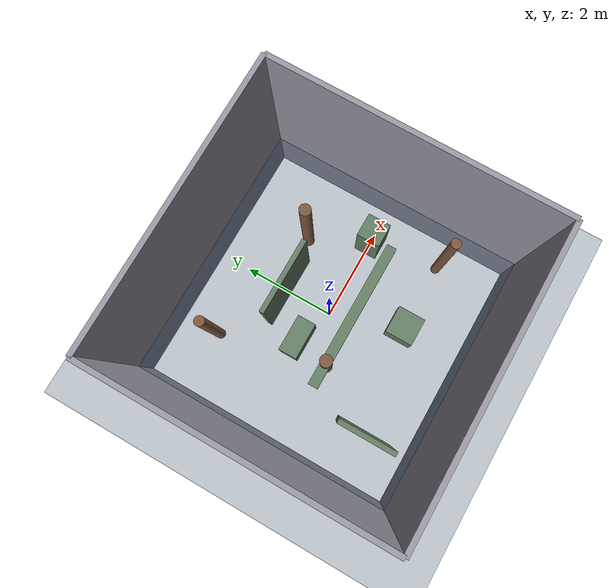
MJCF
<mujoco model="Drone scene with obstacles">
  <option integrator="RK4" density="1.225" viscosity="1.8e-5" timestep="0.001"/>
  <compiler inertiafromgeom="false" autolimits="true"/>
  <statistic center="0 0 1" extent="3"/>

  <visual>
    <headlight diffuse="0.6 0.6 0.6" ambient="0.5 0.5 0.5" specular="0 0 0"/>
    <rgba haze="0.15 0.25 0.35 0" fog="1 1 1 0"/>
    <map fogstart="0" fogend="0"/>
    <global azimuth="0" elevation="-20" ellipsoidinertia="true"/>
  </visual>

  <asset>
    <texture type="skybox" builtin="gradient" rgb1="0.3 0.5 0.7" rgb2="0 0 0"
             width="512" height="3072"/>
    <texture type="2d" name="groundplane" builtin="checker" mark="edge"
             rgb1="0.2 0.3 0.4" rgb2="0.1 0.2 0.3"
             markrgb="0.8 0.8 0.8" width="512" height="512"/>
    <material name="groundplane" texture="groundplane" texuniform="true"
              texrepeat="2 2" reflectance="0.2"/>
    <material name="wall" rgba="0.6 0.6 0.65 1"/>
    <material name="pillar" rgba="0.5 0.35 0.25 1"/>
    <material name="obstacle" rgba="0.4 0.5 0.4 1"/>
  </asset>

  <worldbody>
    <light pos="0 0 3" dir="0 0 -1" directional="true"/>
    <geom name="floor" size="0 0 0.05" type="plane" material="groundplane"/>

    <!-- Room walls (3m x 3m, centered at origin, 2m tall) -->
    <geom name="wall_north" type="box" size="3 0.05 2" pos="0 3 1"
          material="wall" contype="1" conaffinity="1"/>
    <geom name="wall_south" type="box" size="3 0.05 2" pos="0 -3 1"
          material="wall" contype="1" conaffinity="1"/>
    <geom name="wall_east"  type="box" size="0.05 3 2" pos="3 0 1"
          material="wall" contype="1" conaffinity="1"/>
    <geom name="wall_west"  type="box" size="0.05 3 2" pos="-3 0 1"
          material="wall" contype="1" conaffinity="1"/>

    <!-- Pillars -->
    <geom name="pillar1" type="cylinder" size="0.12 1" pos="1.2 1.2 1"
          material="pillar" contype="1" conaffinity="1"/>
    <geom name="pillar2" type="cylinder" size="0.12 1" pos="-1.0 -0.5 1"
          material="pillar" contype="1" conaffinity="1"/>
    <geom name="pillar3" type="cylinder" size="0.10 1" pos="-1.5 1.8 1"
          material="pillar" contype="1" conaffinity="1"/>
    <geom name="pillar4" type="cylinder" size="0.10 1" pos="2.0 -1.5 1"
          material="pillar" contype="1" conaffinity="1"/>

    <!-- Interior walls / partitions -->
    <geom name="partition1" type="box" size="0.8 0.05 0.8" pos="0 1.0 0.8"
          material="obstacle" contype="1" conaffinity="1"/>
    <geom name="partition2" type="box" size="0.05 0.6 0.8" pos="-1.8 -1.8 0.8"
          material="obstacle" contype="1" conaffinity="1"/>

    <!-- Low boxes / crates -->
    <geom name="crate1" type="box" size="0.3 0.3 0.25" pos="0.5 -1.5 0.25"
          material="obstacle" contype="1" conaffinity="1"/>
    <geom name="crate2" type="box" size="0.4 0.2 0.3" pos="-0.8 0.3 0.3"
          material="obstacle" contype="1" conaffinity="1"/>
    <geom name="crate3" type="box" size="0.25 0.25 0.5" pos="1.8 0.0 0.5"
          material="obstacle" contype="1" conaffinity="1"/>

    <!-- Overhead beam (low ceiling obstacle) -->
    <geom name="beam1" type="box" size="1.5 0.1 0.08" pos="0 -0.5 1.5"
          material="obstacle" contype="1" conaffinity="1"/>
  </worldbody>

</mujoco>
